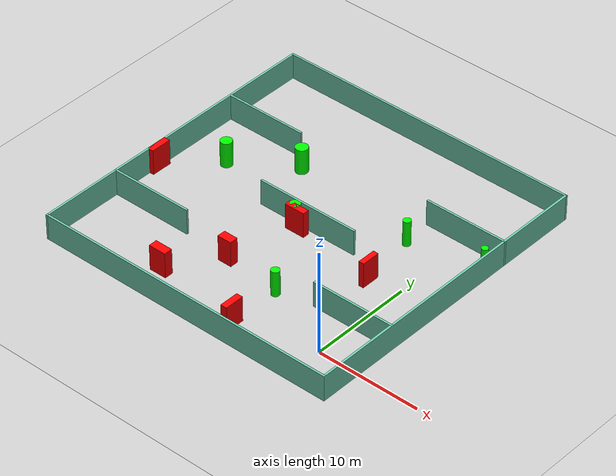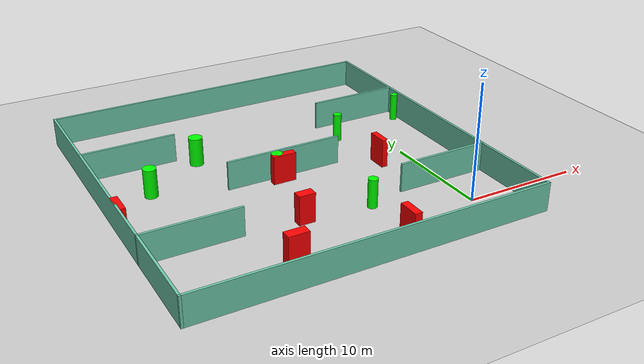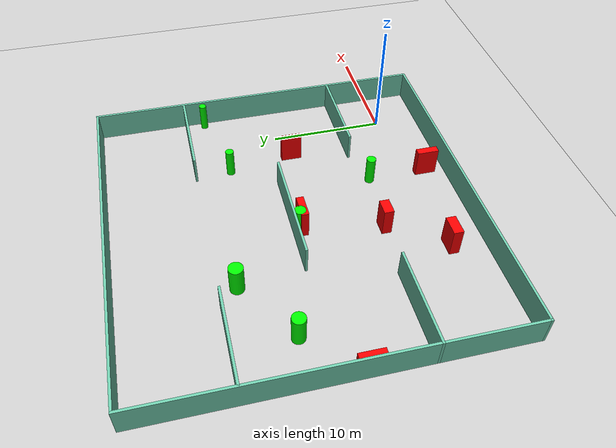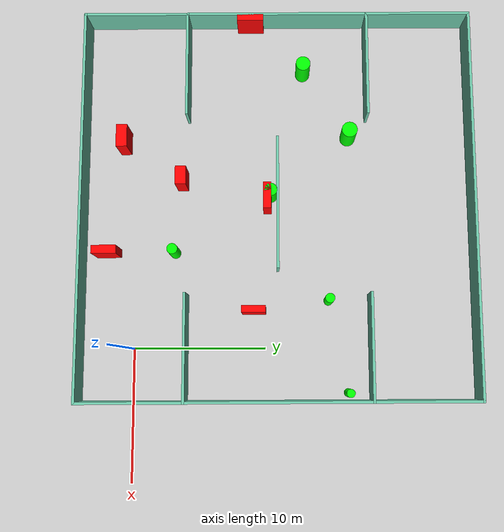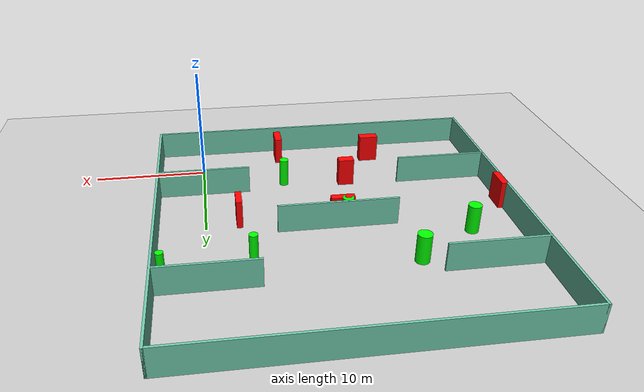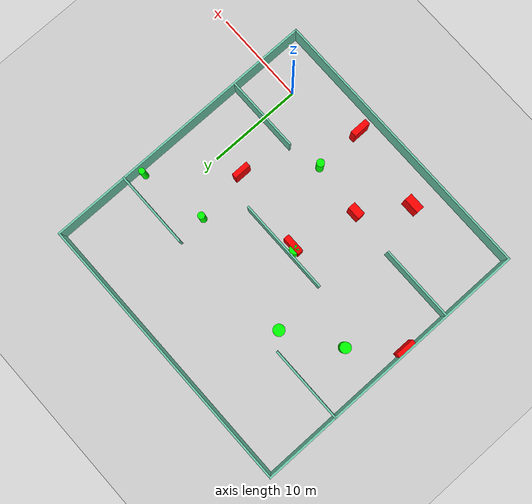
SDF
<sdf version="1.7">
 <world name="default">
  <light name="sun" type="directional">
   <pose>0 0 10 0 -0 0</pose>
   <diffuse>0.8 0.8 0.8 1</diffuse>
   <specular>0.2 0.2 0.2 1</specular>
   <attenuation>
    <range>1000</range>
    <constant>0.9</constant>
    <linear>0.01</linear>
    <quadratic>0.001</quadratic>
   </attenuation>
   <direction>-0.5 0.1 -0.9</direction>
   <spot><inner_angle>0</inner_angle><outer_angle>0</outer_angle><falloff>0</falloff></spot>
  </light>
  <model name="ground_plane">
   <static>1</static>
   <link name="link">
    <collision name="collision">
     <geometry><plane><normal>0 0 1</normal><size>100 100</size></plane></geometry>
     <surface>
      <contact><collide_bitmask>65535</collide_bitmask></contact>
      <friction><ode><mu>100</mu><mu2>50</mu2></ode></friction>
     </surface>
    </collision>
    <visual name="visual">
     <cast_shadows>0</cast_shadows>
     <geometry><plane><normal>0 0 1</normal><size>100 100</size></plane></geometry>
     <material>
      <script><uri>file://media/materials/scripts/gazebo.material</uri><name>Gazebo/Grey</name></script>
     </material>
    </visual>
   </link>
  </model>
  <gravity>0 0 -9.8</gravity>
  <magnetic_field>6e-06 2.3e-05 -4.2e-05</magnetic_field>
  <atmosphere type="adiabatic"/>
  <physics type="ode">
   <max_step_size>0.001</max_step_size>
   <real_time_factor>1</real_time_factor>
   <real_time_update_rate>1000</real_time_update_rate>
  </physics>
  <scene><ambient>0.4 0.4 0.4 1</ambient><background>0.7 0.7 0.7 1</background><shadows>1</shadows></scene>
  <spherical_coordinates>
   <surface_model>EARTH_WGS84</surface_model>
   <latitude_deg>0</latitude_deg>
   <longitude_deg>0</longitude_deg>
   <elevation>0</elevation>
   <heading_deg>0</heading_deg>
  </spherical_coordinates>
  <model name="my_base_walls">
   <link name="Wall_10">
    <collision name="Wall_10_Collision">
     <geometry><box><size>8.2 0.2 2.5</size></box></geometry>
     <pose>0 0 1.25 0 -0 0</pose>
    </collision>
    <visual name="Wall_10_Visual">
     <pose>0 0 1.25 0 -0 0</pose>
     <geometry><box><size>8.2 0.2 2.5</size></box></geometry>
     <material>
      <script><uri>file://media/materials/scripts/gazebo.material</uri><name>Gazebo/Grey</name></script>
      <ambient>0.435294 0.796078 0.67451 1</ambient>
     </material>
     <meta><layer>0</layer></meta>
    </visual>
    <pose>-11 -7 0 0 -0 0</pose>
   </link>
   <link name="Wall_12">
    <collision name="Wall_12_Collision">
     <geometry><box><size>8.2 0.2 2.5</size></box></geometry>
     <pose>0 0 1.25 0 -0 0</pose>
    </collision>
    <visual name="Wall_12_Visual">
     <pose>0 0 1.25 0 -0 0</pose>
     <geometry><box><size>8.2 0.2 2.5</size></box></geometry>
     <material>
      <script><uri>file://media/materials/scripts/gazebo.material</uri><name>Gazebo/Grey</name></script>
      <ambient>0.435294 0.796078 0.67451 1</ambient>
     </material>
     <meta><layer>0</layer></meta>
    </visual>
    <pose>-11 7 0 0 -0 0</pose>
   </link>
   <link name="Wall_14">
    <collision name="Wall_14_Collision">
     <geometry><box><size>8.2 0.2 2.5</size></box></geometry>
     <pose>0 0 1.25 0 -0 0</pose>
    </collision>
    <visual name="Wall_14_Visual">
     <pose>0 0 1.25 0 -0 0</pose>
     <geometry><box><size>8.2 0.2 2.5</size></box></geometry>
     <material>
      <script><uri>file://media/materials/scripts/gazebo.material</uri><name>Gazebo/Grey</name></script>
      <ambient>0.435294 0.796078 0.67451 1</ambient>
     </material>
     <meta><layer>0</layer></meta>
    </visual>
    <pose>11 7 0 0 -0 3.14159</pose>
   </link>
   <link name="Wall_16">
    <collision name="Wall_16_Collision">
     <geometry><box><size>10.2 0.2 2.5</size></box></geometry>
     <pose>0 0 1.25 0 -0 0</pose>
    </collision>
    <visual name="Wall_16_Visual">
     <pose>0 0 1.25 0 -0 0</pose>
     <geometry><box><size>10.2 0.2 2.5</size></box></geometry>
     <material>
      <script><uri>file://media/materials/scripts/gazebo.material</uri><name>Gazebo/Grey</name></script>
      <ambient>0.435294 0.796078 0.67451 1</ambient>
     </material>
     <meta><layer>0</layer></meta>
    </visual>
    <pose>0 0 0 0 -0 3.14159</pose>
   </link>
   <link name="Wall_2">
    <collision name="Wall_2_Collision">
     <geometry><box><size>30.2 0.2 2.5</size></box></geometry>
     <pose>0 0 1.25 0 -0 0</pose>
    </collision>
    <visual name="Wall_2_Visual">
     <pose>0 0 1.25 0 -0 0</pose>
     <geometry><box><size>30.2 0.2 2.5</size></box></geometry>
     <material>
      <script><uri>file://media/materials/scripts/gazebo.material</uri><name>Gazebo/Grey</name></script>
      <ambient>0.435294 0.796078 0.67451 1</ambient>
     </material>
     <meta><layer>0</layer></meta>
    </visual>
    <pose>0 -15 0 0 -0 3.14159</pose>
   </link>
   <link name="Wall_3">
    <collision name="Wall_3_Collision">
     <geometry><box><size>30.2 0.2 2.5</size></box></geometry>
     <pose>0 0 1.25 0 -0 0</pose>
    </collision>
    <visual name="Wall_3_Visual">
     <pose>0 0 1.25 0 -0 0</pose>
     <geometry><box><size>30.2 0.2 2.5</size></box></geometry>
     <material>
      <script><uri>file://media/materials/scripts/gazebo.material</uri><name>Gazebo/Grey</name></script>
      <ambient>0.435294 0.796078 0.67451 1</ambient>
     </material>
     <meta><layer>0</layer></meta>
    </visual>
    <pose>-15 0 0 0 -0 1.5708</pose>
   </link>
   <link name="Wall_4">
    <collision name="Wall_4_Collision">
     <geometry><box><size>30.2 0.2 2.5</size></box></geometry>
     <pose>0 0 1.25 0 -0 0</pose>
    </collision>
    <visual name="Wall_4_Visual">
     <pose>0 0 1.25 0 -0 0</pose>
     <geometry><box><size>30.2 0.2 2.5</size></box></geometry>
     <material>
      <script><uri>file://media/materials/scripts/gazebo.material</uri><name>Gazebo/Grey</name></script>
      <ambient>0.435294 0.796078 0.67451 1</ambient>
     </material>
     <meta><layer>0</layer></meta>
    </visual>
    <pose>0 15 0 0 -0 0</pose>
   </link>
   <link name="Wall_6">
    <collision name="Wall_6_Collision">
     <geometry><box><size>30.2 0.2 2.5</size></box></geometry>
     <pose>0 0 1.25 0 -0 0</pose>
    </collision>
    <visual name="Wall_6_Visual">
     <pose>0 0 1.25 0 -0 0</pose>
     <geometry><box><size>30.2 0.2 2.5</size></box></geometry>
     <material>
      <script><uri>file://media/materials/scripts/gazebo.material</uri><name>Gazebo/Grey</name></script>
      <ambient>0.435294 0.796078 0.67451 1</ambient>
     </material>
     <meta><layer>0</layer></meta>
    </visual>
    <pose>15 0 0 0 -0 1.5708</pose>
   </link>
   <link name="Wall_8">
    <collision name="Wall_8_Collision">
     <geometry><box><size>8.2 0.2 2.5</size></box></geometry>
     <pose>0 0 1.25 0 -0 0</pose>
    </collision>
    <visual name="Wall_8_Visual">
     <pose>0 0 1.25 0 -0 0</pose>
     <geometry><box><size>8.2 0.2 2.5</size></box></geometry>
     <material>
      <script><uri>file://media/materials/scripts/gazebo.material</uri><name>Gazebo/Grey</name></script>
      <ambient>0.435294 0.796078 0.67451 1</ambient>
     </material>
     <meta><layer>0</layer></meta>
    </visual>
    <pose>11 -7 0 0 -0 3.14159</pose>
   </link>
   <static>1</static>
   <pose>-11 11 0 0 -0 0</pose>
  </model>
  <model name="cylinder1">
   <static>1</static>
   <link name="link">
    <inertial>
     <mass>1</mass>
     <inertia><ixx>0.5</ixx><ixy>0</ixy><ixz>0</ixz><iyy>0.5</iyy><iyz>0</iyz><izz>1</izz></inertia>
    </inertial>
    <collision name="collision">
     <geometry><cylinder><radius>0.36173879824743355</radius><length>2.5</length></cylinder></geometry>
    </collision>
    <visual name="visual">
     <geometry><cylinder><radius>0.36173879824743355</radius><length>2.5</length></cylinder></geometry>
     <material>
      <ambient>0 1 0 1</ambient>
      <diffuse>0 1 0 1</diffuse>
      <specular>0.1 0.1 0.1 1</specular>
      <emissive>0 0 0 0</emissive>
     </material>
    </visual>
   </link>
   <pose>-3.62301849061587 14.872398792928028 1.25 0 0 0</pose>
  </model>
  <model name="cylinder2">
   <static>1</static>
   <link name="link">
    <inertial>
     <mass>1</mass>
     <inertia><ixx>0.5</ixx><ixy>0</ixy><ixz>0</ixz><iyy>0.5</iyy><iyz>0</iyz><izz>1</izz></inertia>
    </inertial>
    <collision name="collision">
     <geometry><cylinder><radius>0.4038714696156058</radius><length>2.5</length></cylinder></geometry>
    </collision>
    <visual name="visual">
     <geometry><cylinder><radius>0.4038714696156058</radius><length>2.5</length></cylinder></geometry>
     <material>
      <ambient>0 1 0 1</ambient>
      <diffuse>0 1 0 1</diffuse>
      <specular>0.1 0.1 0.1 1</specular>
      <emissive>0 0 0 0</emissive>
     </material>
    </visual>
   </link>
   <pose>-7.380613013819151 3.046901785452328 1.25 0 0 0</pose>
  </model>
  <model name="cylinder3">
   <static>1</static>
   <link name="link">
    <inertial>
     <mass>1</mass>
     <inertia><ixx>0.5</ixx><ixy>0</ixy><ixz>0</ixz><iyy>0.5</iyy><iyz>0</iyz><izz>1</izz></inertia>
    </inertial>
    <collision name="collision">
     <geometry><cylinder><radius>0.5591577001857757</radius><length>2.5</length></cylinder></geometry>
    </collision>
    <visual name="visual">
     <geometry><cylinder><radius>0.5591577001857757</radius><length>2.5</length></cylinder></geometry>
     <material>
      <ambient>0 1 0 1</ambient>
      <diffuse>0 1 0 1</diffuse>
      <specular>0.1 0.1 0.1 1</specular>
      <emissive>0 0 0 0</emissive>
     </material>
    </visual>
   </link>
   <pose>-21.896281514810987 13.017761221132183 1.25 0 0 0</pose>
  </model>
  <model name="cylinder4">
   <static>1</static>
   <link name="link">
    <inertial>
     <mass>1</mass>
     <inertia><ixx>0.5</ixx><ixy>0</ixy><ixz>0</ixz><iyy>0.5</iyy><iyz>0</iyz><izz>1</izz></inertia>
    </inertial>
    <collision name="collision">
     <geometry><cylinder><radius>0.5978870723191994</radius><length>2.5</length></cylinder></geometry>
    </collision>
    <visual name="visual">
     <geometry><cylinder><radius>0.5978870723191994</radius><length>2.5</length></cylinder></geometry>
     <material>
      <ambient>0 1 0 1</ambient>
      <diffuse>0 1 0 1</diffuse>
      <specular>0.1 0.1 0.1 1</specular>
      <emissive>0 0 0 0</emissive>
     </material>
    </visual>
   </link>
   <pose>-16.568989383065418 16.549048165650806 1.25 0 0 0</pose>
  </model>
  <model name="cylinder5">
   <static>1</static>
   <link name="link">
    <inertial>
     <mass>1</mass>
     <inertia><ixx>0.5</ixx><ixy>0</ixy><ixz>0</ixz><iyy>0.5</iyy><iyz>0</iyz><izz>1</izz></inertia>
    </inertial>
    <collision name="collision">
     <geometry><cylinder><radius>0.48355475986956986</radius><length>2.5</length></cylinder></geometry>
    </collision>
    <visual name="visual">
     <geometry><cylinder><radius>0.48355475986956986</radius><length>2.5</length></cylinder></geometry>
     <material>
      <ambient>0 1 0 1</ambient>
      <diffuse>0 1 0 1</diffuse>
      <specular>0.1 0.1 0.1 1</specular>
      <emissive>0 0 0 0</emissive>
     </material>
    </visual>
   </link>
   <pose>-11.894098211120847 10.48699670614429 1.25 0 0 0</pose>
  </model>
  <model name="cylinder6">
   <static>1</static>
   <link name="link">
    <inertial>
     <mass>1</mass>
     <inertia><ixx>0.5</ixx><ixy>0</ixy><ixz>0</ixz><iyy>0.5</iyy><iyz>0</iyz><izz>1</izz></inertia>
    </inertial>
    <collision name="collision">
     <geometry><cylinder><radius>0.3160160647357457</radius><length>2.5</length></cylinder></geometry>
    </collision>
    <visual name="visual">
     <geometry><cylinder><radius>0.3160160647357457</radius><length>2.5</length></cylinder></geometry>
     <material>
      <ambient>0 1 0 1</ambient>
      <diffuse>0 1 0 1</diffuse>
      <specular>0.1 0.1 0.1 1</specular>
      <emissive>0 0 0 0</emissive>
     </material>
    </visual>
   </link>
   <pose>3.3758028971957224 16.285813978670337 1.25 0 0 0</pose>
  </model>
  <model name="box1">
   <static>1</static>
   <link name="link">
    <inertial>
     <mass>1</mass>
     <inertia><ixx>0.083</ixx><ixy>0</ixy><ixz>0</ixz><iyy>0.083</iyy><iyz>0</iyz><izz>0.083</izz></inertia>
    </inertial>
    <collision name="collision">
     <geometry><box><size>0.5186917633610486 1.7965735671819867 2.5</size></box></geometry>
    </collision>
    <visual name="visual">
     <geometry><box><size>0.5186917633610486 1.7965735671819867 2.5</size></box></geometry>
     <material>
      <ambient>1 0 0 1</ambient>
      <diffuse>1 0 0 1</diffuse>
      <specular>0.1 0.1 0.1 1</specular>
      <emissive>0 0 0 0</emissive>
     </material>
    </visual>
    <sensor name="my_contact" type="contact">
     <contact><collision>box_collision</collision><topic>__default_topic__</topic></contact>
    </sensor>
   </link>
   <pose>-2.8370479742455075 9.158977265361973 1.25 0 0 0</pose>
  </model>
  <model name="box2">
   <static>1</static>
   <link name="link">
    <inertial>
     <mass>1</mass>
     <inertia><ixx>0.083</ixx><ixy>0</ixy><ixz>0</ixz><iyy>0.083</iyy><iyz>0</iyz><izz>0.083</izz></inertia>
    </inertial>
    <collision name="collision">
     <geometry><box><size>0.5847561597447719 2.039187019229958 2.5</size></box></geometry>
    </collision>
    <visual name="visual">
     <geometry><box><size>0.5847561597447719 2.039187019229958 2.5</size></box></geometry>
     <material>
      <ambient>1 0 0 1</ambient>
      <diffuse>1 0 0 1</diffuse>
      <specular>0.1 0.1 0.1 1</specular>
      <emissive>0 0 0 0</emissive>
     </material>
    </visual>
    <sensor name="my_contact" type="contact">
     <contact><collision>box_collision</collision><topic>__default_topic__</topic></contact>
    </sensor>
   </link>
   <pose>-25.76617582729805 8.887657771253856 1.25 0 0 0</pose>
  </model>
  <model name="box3">
   <static>1</static>
   <link name="link">
    <inertial>
     <mass>1</mass>
     <inertia><ixx>0.083</ixx><ixy>0</ixy><ixz>0</ixz><iyy>0.083</iyy><iyz>0</iyz><izz>0.083</izz></inertia>
    </inertial>
    <collision name="collision">
     <geometry><box><size>0.6237591324153666 1.8734123052134657 2.5</size></box></geometry>
    </collision>
    <visual name="visual">
     <geometry><box><size>0.6237591324153666 1.8734123052134657 2.5</size></box></geometry>
     <material>
      <ambient>1 0 0 1</ambient>
      <diffuse>1 0 0 1</diffuse>
      <specular>0.1 0.1 0.1 1</specular>
      <emissive>0 0 0 0</emissive>
     </material>
    </visual>
    <sensor name="my_contact" type="contact">
     <contact><collision>box_collision</collision><topic>__default_topic__</topic></contact>
    </sensor>
   </link>
   <pose>-7.372395160482137 -2.1066752841954206 1.25 0 0 0</pose>
  </model>
  <model name="box4">
   <static>1</static>
   <link name="link">
    <inertial>
     <mass>1</mass>
     <inertia><ixx>0.083</ixx><ixy>0</ixy><ixz>0</ixz><iyy>0.083</iyy><iyz>0</iyz><izz>0.083</izz></inertia>
    </inertial>
    <collision name="collision">
     <geometry><box><size>1.3954203168644235 0.81827827469846 2.5</size></box></geometry>
    </collision>
    <visual name="visual">
     <geometry><box><size>1.3954203168644235 0.81827827469846 2.5</size></box></geometry>
     <material>
      <ambient>1 0 0 1</ambient>
      <diffuse>1 0 0 1</diffuse>
      <specular>0.1 0.1 0.1 1</specular>
      <emissive>0 0 0 0</emissive>
     </material>
    </visual>
    <sensor name="my_contact" type="contact">
     <contact><collision>box_collision</collision><topic>__default_topic__</topic></contact>
    </sensor>
   </link>
   <pose>-13.061243122530408 3.5924069846357654 1.25 0 0 0</pose>
  </model>
  <model name="box5">
   <static>1</static>
   <link name="link">
    <inertial>
     <mass>1</mass>
     <inertia><ixx>0.083</ixx><ixy>0</ixy><ixz>0</ixz><iyy>0.083</iyy><iyz>0</iyz><izz>0.083</izz></inertia>
    </inertial>
    <collision name="collision">
     <geometry><box><size>2.0160688808102623 0.6250583726984235 2.5</size></box></geometry>
    </collision>
    <visual name="visual">
     <geometry><box><size>2.0160688808102623 0.6250583726984235 2.5</size></box></geometry>
     <material>
      <ambient>1 0 0 1</ambient>
      <diffuse>1 0 0 1</diffuse>
      <specular>0.1 0.1 0.1 1</specular>
      <emissive>0 0 0 0</emissive>
     </material>
    </visual>
    <sensor name="my_contact" type="contact">
     <contact><collision>box_collision</collision><topic>__default_topic__</topic></contact>
    </sensor>
   </link>
   <pose>-11.480631353313683 10.203610803146216 1.25 0 0 0</pose>
  </model>
  <model name="box6">
   <static>1</static>
   <link name="link">
    <inertial>
     <mass>1</mass>
     <inertia><ixx>0.083</ixx><ixy>0</ixy><ixz>0</ixz><iyy>0.083</iyy><iyz>0</iyz><izz>0.083</izz></inertia>
    </inertial>
    <collision name="collision">
     <geometry><box><size>1.7196224448448012 0.8320358272487247 2.5</size></box></geometry>
    </collision>
    <visual name="visual">
     <geometry><box><size>1.7196224448448012 0.8320358272487247 2.5</size></box></geometry>
     <material>
      <ambient>1 0 0 1</ambient>
      <diffuse>1 0 0 1</diffuse>
      <specular>0.1 0.1 0.1 1</specular>
      <emissive>0 0 0 0</emissive>
     </material>
    </visual>
    <sensor name="my_contact" type="contact">
     <contact><collision>box_collision</collision><topic>__default_topic__</topic></contact>
    </sensor>
   </link>
   <pose>-16.20164733749671 -0.9599502763888603 1.25 0 0 0</pose>
  </model>
 </world>
</sdf>
